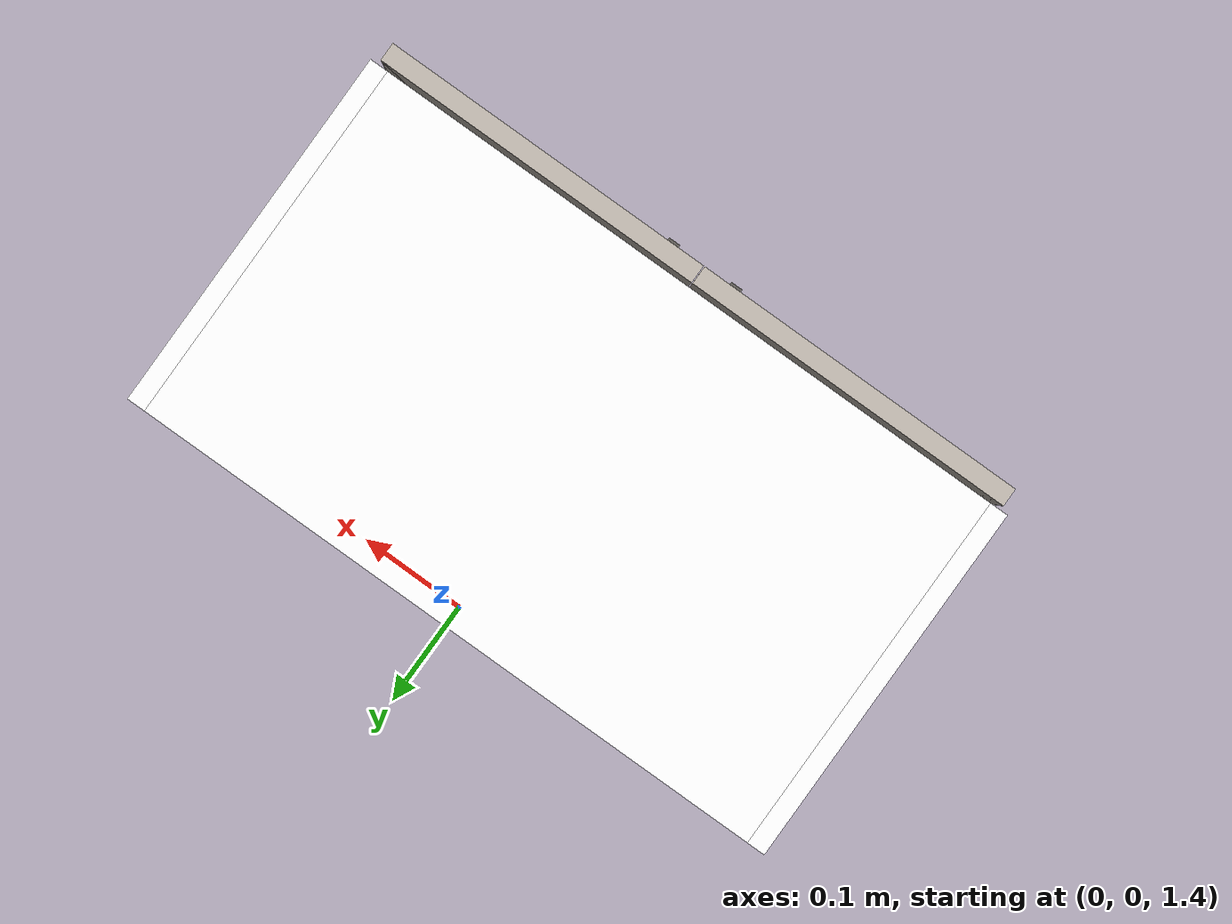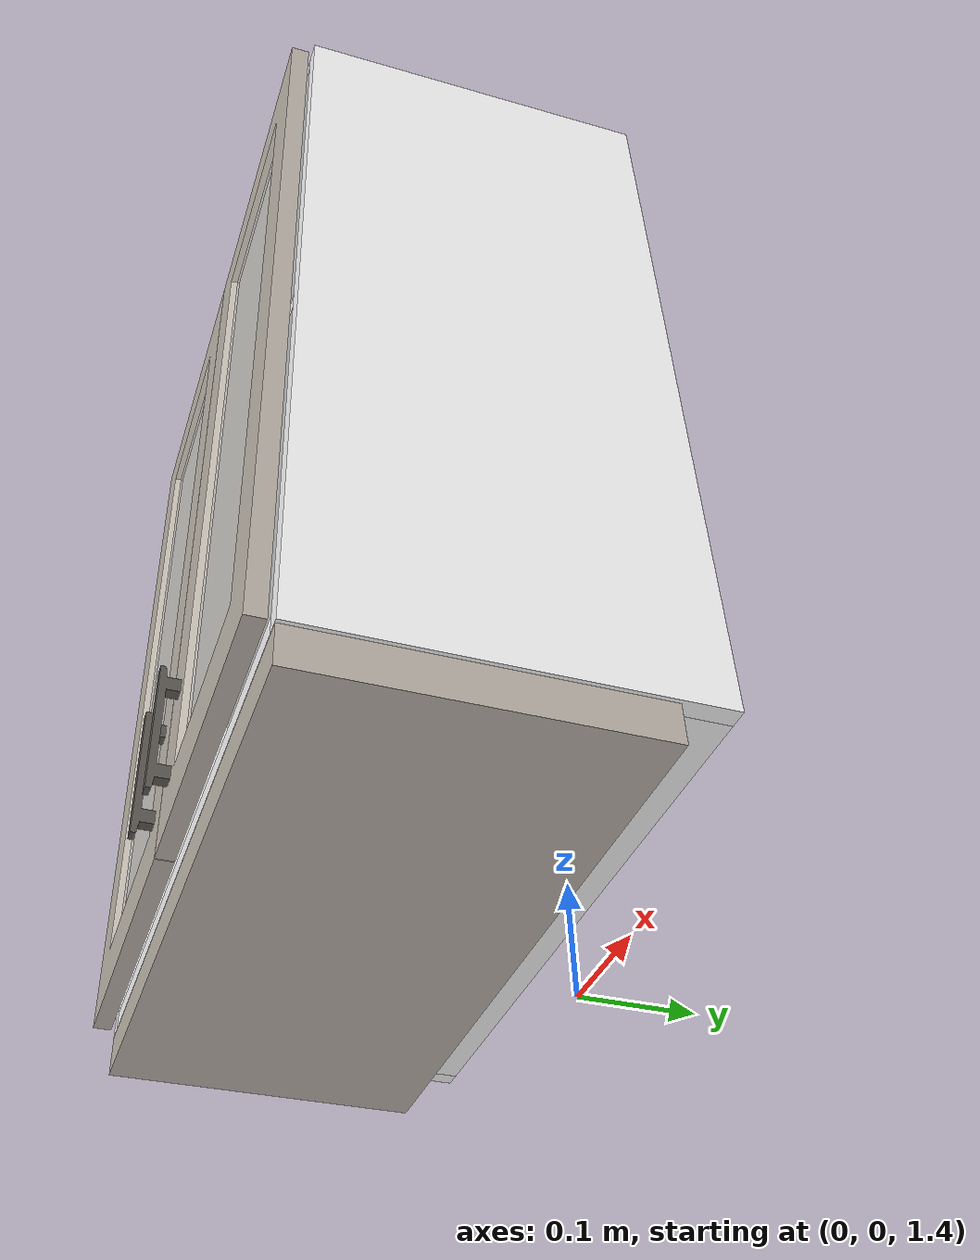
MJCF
<?xml version="1.0" encoding="utf-8"?>
<mujoco model="wall_cabinet_600">
  <compiler angle="radian" meshdir="assets" texturedir="assets" autolimits="true"/>
  <asset>
    <texture type="2d" name="hanging_drawer_600" file="hanging_drawer_600.png"/>
    <texture type="2d" name="vent" file="vent.png"/>
    <texture type="2d" name="handle" file="handle.png"/>
    <material name="cabinet" shininess="0.1"/>
    <material name="back" shininess="0.1"/>
    <material name="glass" specular="0.8" shininess="0.5" rgba="0.9 0.9 0.9 0.5"/>
    <material name="vent" texture="vent"/>
    <material name="hanging_drawer_600" shininess="0.1" texture="hanging_drawer_600"/>
    <material name="handle" rgba="0.5 0.5 0.5 1" texture="handle"/>
    <mesh file="hanging_drawer_600.obj"/>
    <mesh file="hanging_drawer_600_glass.obj"/>
    <mesh file="drawer_handle.obj"/>
  </asset>
  <default>
    <default class="wall_cabinet_600">
      <geom density="10" solimp="0.998 0.998 0.001" solref="0.004 1"/>
      <joint solimplimit="0.998 0.998 0.001" solreflimit="0.004 1"/>
      <default class="visual">
        <geom contype="0" conaffinity="0"/>
      </default>
      <default class="collision">
        <geom mass="0" group="3"/>
      </default>
    </default>
  </default>
  <worldbody>
    <body name="wall_cabinet_600" childclass="wall_cabinet_600">
      <body name="wall_cabinet_600_offset" pos="0 0 1.466">
        <geom pos="0 -0.022 0.352" size="0.294 0.354 0.002" type="box" material="back" euler="1.5708 0 0"/>
        <geom pos="0.292 -0.16 0.352" size="0.16 0.36 0.008" type="box" material="cabinet" euler="1.5708 1.5708 0"/>
        <geom pos="-0.292 -0.16 0.352" size="0.16 0.36 0.008" type="box" material="cabinet" euler="1.5708 1.5708 0"/>
        <body name="shelf_bottom">
          <geom pos="0 -0.16 0" size="0.16 0.284 0.008" type="box" material="cabinet" euler="0 0 1.5708"/>
        </body>
        <geom pos="0 -0.16 0.704" size="0.16 0.284 0.008" type="box" material="cabinet" euler="0 0 1.5708"/>
        <body name="shelf" pos="0 0 0.352">
          <geom pos="0 -0.17 0" size="0.1475 0.284 0.008" type="box" material="cabinet" euler="0 0 1.5708"/>
        </body>
        <body name="door_right" pos="-0.292 -0.328 0.352">
          <joint pos="0 -0.008 0" name="door_right" type="hinge" axis="0 0 -1" damping="0.01" range="0 1.5708"/>
          <geom pos="0.145 -0.004 0" type="mesh" mesh="hanging_drawer_600" material="hanging_drawer_600" euler="1.5708 0 0"/>
          <body pos="0.26 0 -0.26" euler="-3.1416 1.5708 0">
            <geom type="mesh" mesh="drawer_handle" material="handle" class="visual" euler="1.5708 0 0"/>
            <geom pos="0 0.027 0" size="0.06 0.0032 0.006" type="box" class="collision"/>
            <geom pos="-0.0425 0.015 0" size="0.006 0.015 0.006" type="box" class="collision"/>
            <geom pos="0.0425 0.015 0" size="0.006 0.015 0.006" type="box" class="collision"/>
          </body>
        </body>
        <body name="door_left" pos="0.292 -0.328 0.352">
          <joint pos="0 -0.008 0" name="door_left" type="hinge" axis="0 0 1" damping="0.01" range="0 1.5708"/>
          <geom pos="-0.145 -0.004 0" type="mesh" mesh="hanging_drawer_600" material="hanging_drawer_600" euler="1.5708 0 0"/>
          <body pos="-0.26 0 -0.26" euler="-3.1416 1.5708 0">
            <geom type="mesh" mesh="drawer_handle" material="handle" class="visual" euler="1.5708 0 0"/>
            <geom pos="0 0.027 0" size="0.06 0.0032 0.006" type="box" class="collision"/>
            <geom pos="-0.0425 0.015 0" size="0.006 0.015 0.006" type="box" class="collision"/>
            <geom pos="0.0425 0.015 0" size="0.006 0.015 0.006" type="box" class="collision"/>
          </body>
        </body>
        <body name="door_right_glass" pos="-0.292 -0.328 0.352">
          <joint pos="0 -0.008 0" name="door_right_glass" type="hinge" axis="0 0 -1" damping="0.01" range="0 1.5708"/>
          <geom pos="0.145 -0.004 0" type="mesh" mesh="hanging_drawer_600_glass" material="hanging_drawer_600" euler="1.5708 0 0"/>
          <geom pos="0.145 -0.004 0" size="0.1 0.31 0.002" type="box" material="glass" euler="1.5708 0 0"/>
          <body pos="0.26 0 -0.26" euler="-3.1416 1.5708 0">
            <geom type="mesh" mesh="drawer_handle" material="handle" class="visual" euler="1.5708 0 0"/>
            <geom pos="0 0.027 0" size="0.06 0.0032 0.006" type="box" class="collision"/>
            <geom pos="-0.0425 0.015 0" size="0.006 0.015 0.006" type="box" class="collision"/>
            <geom pos="0.0425 0.015 0" size="0.006 0.015 0.006" type="box" class="collision"/>
          </body>
        </body>
        <body name="door_left_glass" pos="0.292 -0.328 0.352">
          <joint pos="0 -0.008 0" name="door_left_glass" type="hinge" axis="0 0 1" damping="0.01" range="0 1.5708"/>
          <geom pos="-0.145 -0.004 0" type="mesh" mesh="hanging_drawer_600_glass" material="hanging_drawer_600" euler="1.5708 0 0"/>
          <geom pos="-0.145 -0.004 0" size="0.1 0.31 0.002" type="box" material="glass" euler="1.5708 0 0"/>
          <body pos="-0.26 0 -0.26" euler="-3.1416 1.5708 0">
            <geom type="mesh" mesh="drawer_handle" material="handle" class="visual" euler="1.5708 0 0"/>
            <geom pos="0 0.027 0" size="0.06 0.0032 0.006" type="box" class="collision"/>
            <geom pos="-0.0425 0.015 0" size="0.006 0.015 0.006" type="box" class="collision"/>
            <geom pos="0.0425 0.015 0" size="0.006 0.015 0.006" type="box" class="collision"/>
          </body>
        </body>
        <body name="vent">
          <geom pos="0 -0.1825 -0.0263" size="0.298 0.1375 0.017" type="box" material="vent"/>
        </body>
      </body>
    </body>
  </worldbody>
</mujoco>
